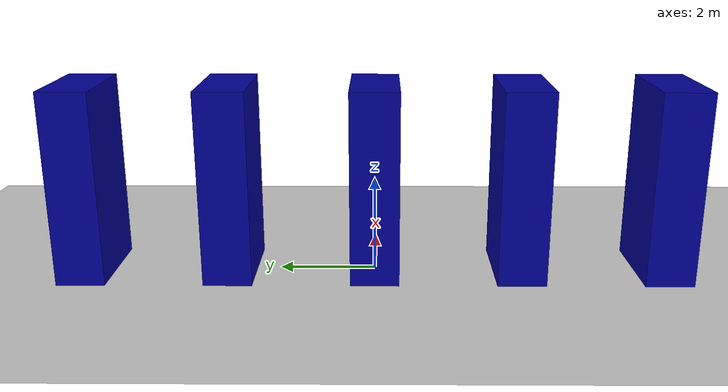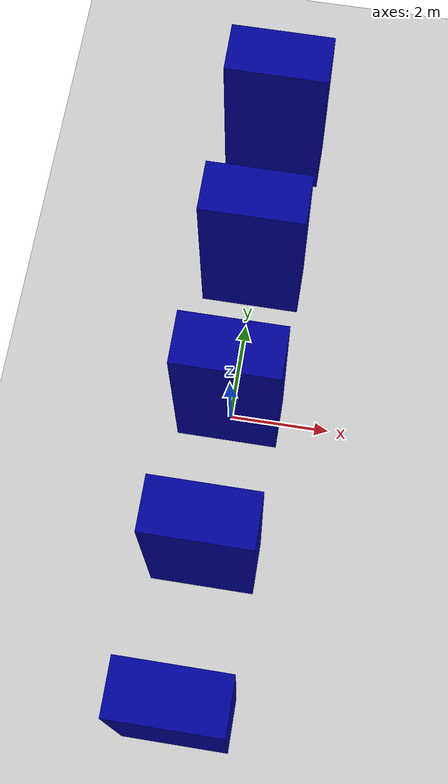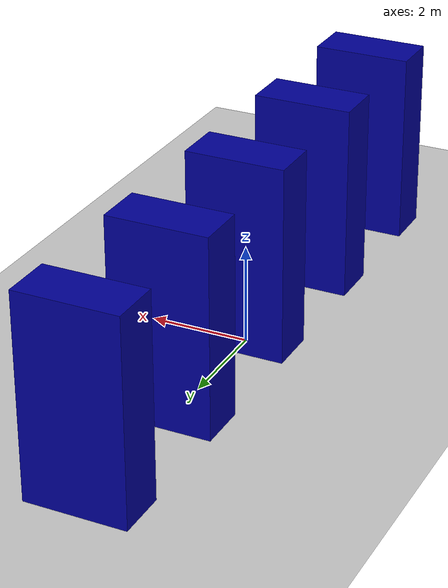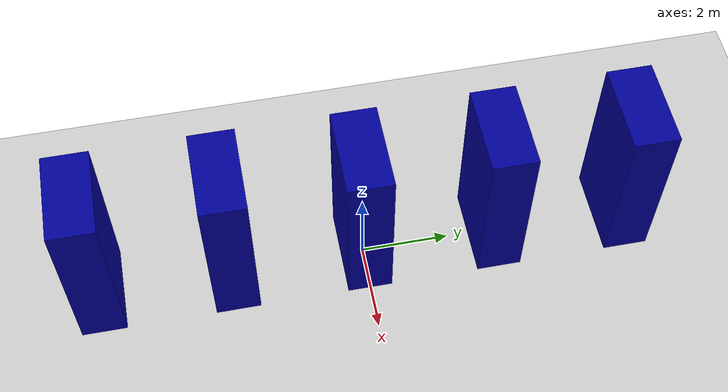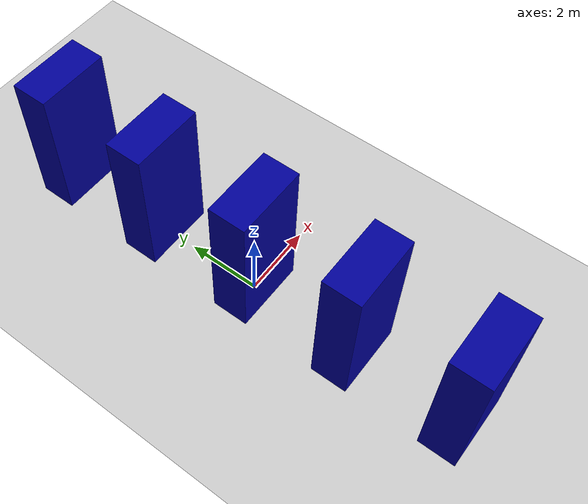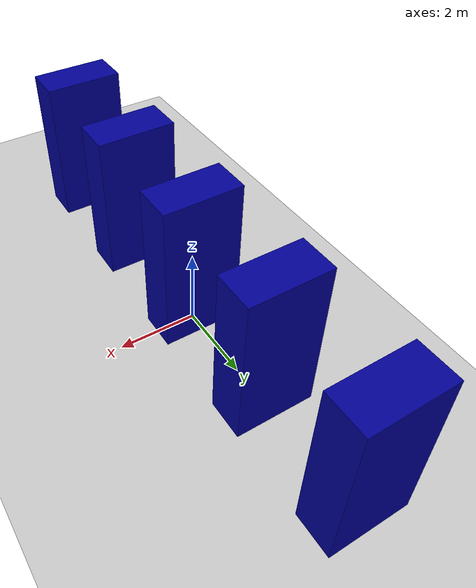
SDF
<?xml version="1.0" ?>
<sdf version="1.8">
    <world name="sim_world">
        <physics name="1ms" type="ignored">
            <max_step_size>0.001</max_step_size>
            <real_time_factor>1.0</real_time_factor>
        </physics>
        <plugin filename="libignition-gazebo-physics-system.so" name="ignition::gazebo::systems::Physics">
        </plugin>
        <plugin filename="libignition-gazebo-user-commands-system.so" name="ignition::gazebo::systems::UserCommands">
        </plugin>
        <plugin filename="libignition-gazebo-scene-broadcaster-system.so" name="ignition::gazebo::systems::SceneBroadcaster">
        </plugin>

        <light type="directional" name="sun">
            <cast_shadows>true</cast_shadows>
            <pose>0 0 10 0 0 0</pose>
            <diffuse>0.8 0.8 0.8 1</diffuse>
            <specular>0.2 0.2 0.2 1</specular>
            <attenuation>
                <range>1000</range>
                <constant>0.9</constant>
                <linear>0.01</linear>
                <quadratic>0.001</quadratic>
            </attenuation>
            <direction>-0.5 0.1 -0.9</direction>
        </light>

        <model name="ground_plane">
            <static>true</static>
            <link name="link">
                <collision name="collision">
                    <geometry>
                        <plane>
                            <normal>0 0 1</normal>
                        </plane>
                    </geometry>
                </collision>
                <visual name="visual">
                    <geometry>
                        <plane>
                            <normal>0 0 1</normal>
                            <size>100 100</size>
                        </plane>
                    </geometry>
                    <material>
                        <ambient>0.8 0.8 0.8 1</ambient>
                        <diffuse>0.8 0.8 0.8 1</diffuse>
                        <specular>0.8 0.8 0.8 1</specular>
                    </material>
                </visual>
            </link>
        </model>

        <include>
            <uri>file://domino.sdf</uri>
            <pose>0 0 2 0 0 0</pose>
        </include>

        <include>
            <uri>file://domino.sdf</uri>
            <name>domino_1</name>
            <pose>0 -3 2 0 0 0</pose>
        </include>

        <include>
            <uri>file://domino.sdf</uri>
            <name>domino_2</name>
            <pose>0 -6 2 0 0 0</pose>
        </include>

        <include>
            <uri>file://domino.sdf</uri>
            <name>domino_3</name>
            <pose>0 3 2 0 0 0</pose>
        </include>

        <include>
            <uri>file://domino.sdf</uri>
            <name>domino_4</name>
            <pose>0 6 2 0 0 0</pose>
        </include>

    </world>
</sdf>

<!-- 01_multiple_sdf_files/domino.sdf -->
<sdf version="1.9">
<model name="domino" canonical_link="Cube_link">
  <link name="Cube_link">
    <collision name="Cube_collision">
      <pose relative_to="Cube_link">0.00000 -0.00000 -0.00000 0.00000 0.00000 0.00000</pose>
      <geometry>
        <box>
          <size>2.00000 1.00000 4.00000</size>
        </box>
      </geometry>
      <surface>
        <contact/>
      </surface>
    </collision>
    <inertial>
      <inertia>
        <ixx>1.41667</ixx>
        <ixy>0.00000</ixy>
        <ixz>0.00000</ixz>
        <iyy>1.66667</iyy>
        <iyz>0.00000</iyz>
        <izz>0.41667</izz>
      </inertia>
      <pose relative_to="Cube_link">0.00000 -0.00000 -0.00000 0.00000 0.00000 0.00000</pose>
      <mass>0.0500000</mass>
    </inertial>
    <visual name="Cube">
      <material>
        <diffuse>0.00000 0.00000 0.60000 0.90000</diffuse>
        <specular>0.00000 0.00000 0.60000 0.90000</specular>
        <emissive>0.00000 0.00000 0.60000 0.90000</emissive>
      </material>
      <pose relative_to="Cube_link">0.00000 0.00000 0.00000 0.00000 0.00000 0.00000</pose>
      <geometry>
        <box>
          <size>2.00000 1.00000 4.00000</size>
        </box>
      </geometry>
    </visual>
  </link>
</model>
</sdf>
